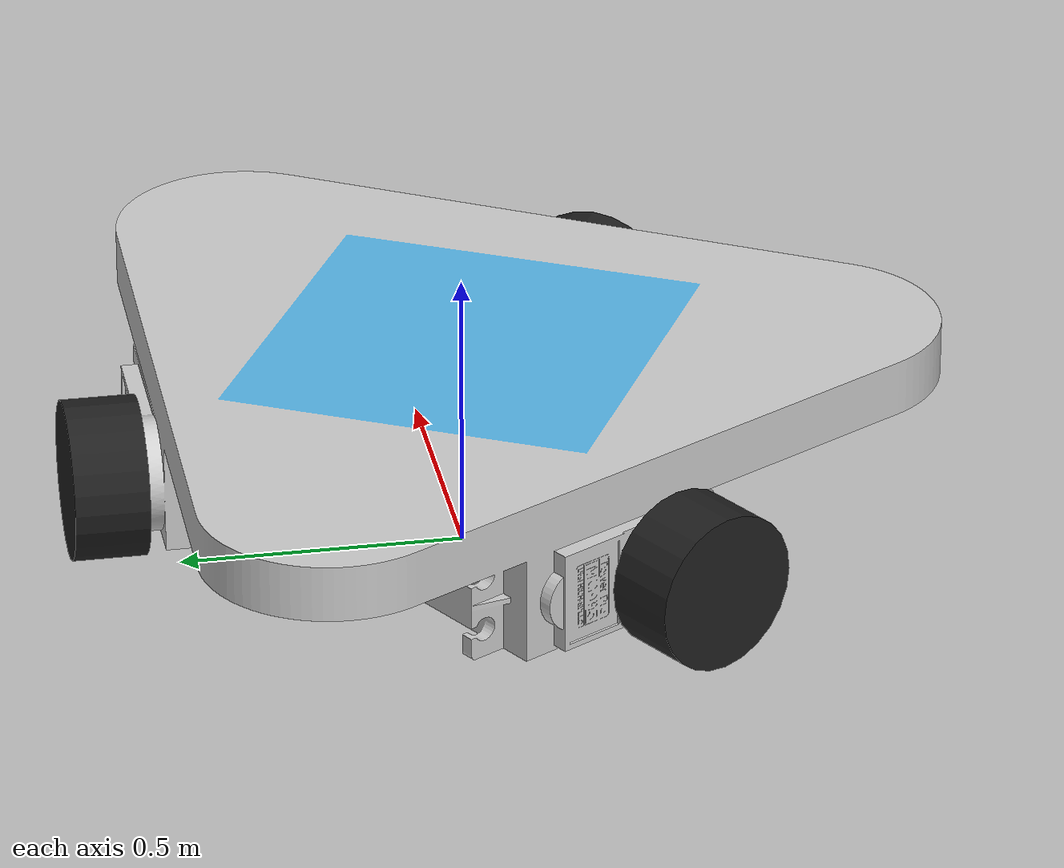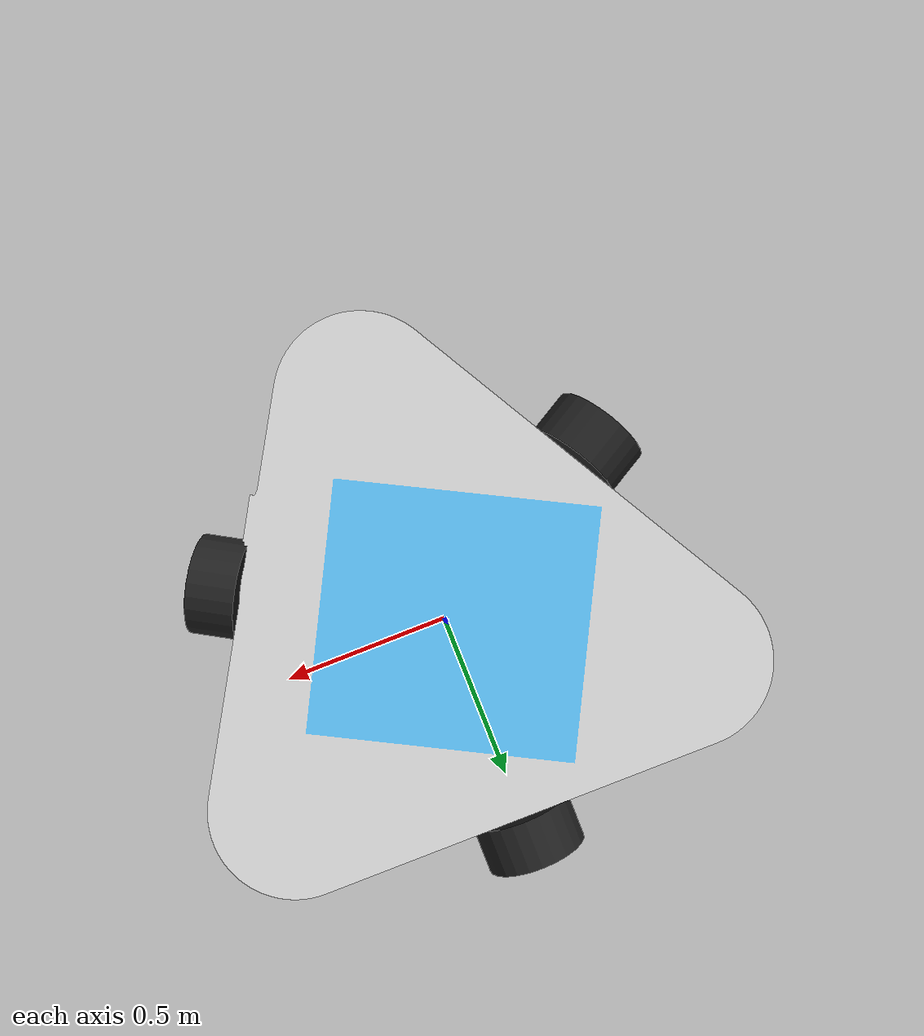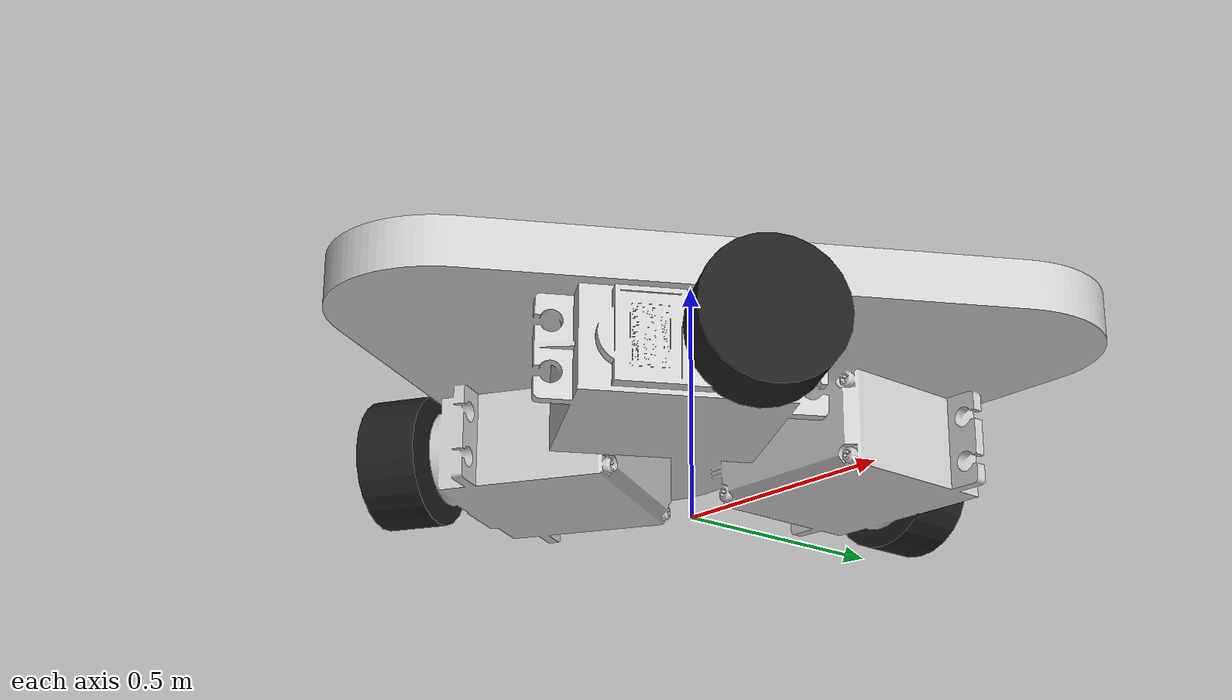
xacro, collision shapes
<?xml version="1.0" ?>

<robot name="hb_bot" xmlns:xacro="http://www.ros.org/wiki/xacro">
    <xacro:include filename="$(find hb_task_1b)/urdf/materials.xacro"/>

    <link name ="footprint_link">
    </link>
    <joint name="footprint_joint" type="fixed">
         <origin
                xyz="0.0 0.0 0.0"
                rpy="0 0 0" />
        <parent link="footprint_link"/>
        <child link="base_link"/>

    </joint>

    <!--Base link-->
    <link name ="base_link">
        <inertial>
            <origin xyz="0 0.0 0.28" rpy="0 0 0" />
            <mass
                value="0.28" />
            <inertia
                ixx="0.011666666666667"
                ixy="0"
                ixz="0"
                iyy="0.011666666666667"
                iyz="0"
                izz="0.011666666666667" />

        </inertial>
         <collision name="collision">
            <origin
                xyz="0 0.0 0.28"
                rpy="0 0 0" />

            <geometry>
                <mesh filename ="file://$(find hb_task_1b)/meshes/base.dae" scale="0.01  0.01 0.01"/>

            </geometry>
        </collision>
        <visual>
            <origin
                xyz="0 0 0.28"
                rpy="0 0 0" />
            <geometry>
                <mesh
                filename ="file://$(find hb_task_1b)/meshes/base.dae" scale="0.01  0.01 0.01"/>
            </geometry>
        </visual>
    </link>

<!-- lot more stuff needs to go here -->
    <!-- right_wheel -->
    <link name ="right_wheel">

        <inertial>
            <origin
                xyz="0 -0.05 0.0"
                rpy="1.57 0 0" />
            <mass
                value="0.060" />
            <inertia
                ixx="1.825e-4"
                ixy="0"
                ixz="0.00000000"
                iyy="1.825e-4"
                iyz="0"
                izz="1.825e-4" />
        </inertial>
         <collision name="R_collision">
         <origin
                xyz="0 -0.05 0.0"
                rpy="1.57 0 0" />
          <geometry>
            <cylinder length="0.13" radius="0.14"/>
          </geometry>
        </collision>

        <visual>
            <origin
            xyz="0.0 0.0 0.0"
            rpy="0.0 0.0 0.0" />
            <geometry>
                <mesh filename ="file://$(find hb_task_1b)/meshes/wheel.stl" scale="5 5 5"/>
            </geometry>

        </visual>
    </link>
    <!-- Joint -->
    <joint name ="right_wheel_joint" type="continuous" >
        <origin
                xyz="0.0 0.68 0.18"
                rpy="0 0 0" />
        <parent link="base_link"/>
        <child link="right_wheel"/>
        <axis xyz="0.0 1.0 0.0"/>
         <limit
            effort="5"
            velocity="5" />
    </joint>
    <!-- material properties -->
    <gazebo reference="right_wheel">
        <material>Gazebo/Black</material>
    </gazebo>

    <!-- left_wheel -->
    <link name ="left_wheel">

        <inertial>
            <origin
                xyz="0 -0.05 0.0"
                rpy="1.57 0 0" />
            <mass
                value="0.060" />
            <inertia
                ixx="1.825e-4"
                ixy="0"
                ixz="0.00000000"
                iyy="1.825e-4"
                iyz="0"
                izz="1.825e-4" />
        </inertial>
         <collision name="L_collision">
         <origin
                xyz="0 -0.05 0.0"
                rpy="1.57 0 0" />
          <geometry>
            <cylinder length="0.13" radius="0.14"/>
          </geometry>
        </collision>

        <visual>
            <origin
            xyz="0.0 0.0 0.0"
            rpy="0.0 0.0 0.0" />
            <geometry>
                <mesh filename ="file://$(find hb_task_1b)/meshes/wheel.stl" scale="5 5 5"/>
            </geometry>

        </visual>
    </link>
    <!-- Joint -->
    <joint name ="left_wheel_joint" type="continuous" >
        <origin
                xyz="-0.5888972746 -0.34 0.18"
                rpy="0 0 2.0943951024" />
        <parent link="base_link"/>
        <child link="left_wheel"/>
        <axis xyz="0.0 1.0 0.0"/>
         <limit
            effort="5"
            velocity="5" />
    </joint>

    <!-- material properties -->
    <gazebo reference="left_wheel">
        <material>Gazebo/Black</material>
    </gazebo>

    <!-- front_wheel -->
    <link name ="front_wheel">

        <inertial>
            <origin
                xyz="0 -0.05 0.0"
                rpy="1.57 0 0" />
            <mass
                value="0.060" />
            <inertia
                ixx="1.825e-4"
                ixy="0"
                ixz="0.00000000"
                iyy="1.825e-4"
                iyz="0"
                izz="1.825e-4" />
        </inertial>
         <collision name="F_collision">
         <origin
                xyz="0 -0.05 0.0"
                rpy="1.57 0 0" />
          <geometry>
            <cylinder length="0.13" radius="0.14"/>
          </geometry>
        </collision>

        <visual>
            <origin
            xyz="0.0 0.0 0.0"
            rpy="0.0 0.0 0.0" />
            <geometry>
                <mesh filename ="file://$(find hb_task_1b)/meshes/wheel.stl" scale="5 5 5"/>
            </geometry>

        </visual>
    </link>
    <!-- Joint -->
    <joint name ="front_wheel_joint" type="continuous" >
        <origin
                xyz="0.5888972746 -0.34 0.18"
                rpy="0 0 4.1887902048" />
        <parent link="base_link"/>
        <child link="front_wheel"/>
        <axis xyz="0.0 1.0 0.0"/>
         <limit
            effort="5"
            velocity="5" />
    </joint>

    <!-- material properties -->
    <gazebo reference="front_wheel">
        <material>Gazebo/Black</material>
    </gazebo>

    <!-- ros_control plugin -->

  <gazebo>
    <plugin name="object_controller" filename="libgazebo_ros_planar_move.so">
      <commandTopic>cmd_vel</commandTopic>
      <odometryTopic>odom</odometryTopic>
      <odometryFrame>odom</odometryFrame>
      <odometryRate>20.0</odometryRate>
      <robotBaseFrame>chasis</robotBaseFrame>
    </plugin>
  </gazebo>
</robot>
